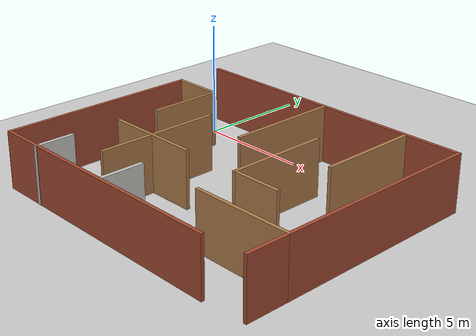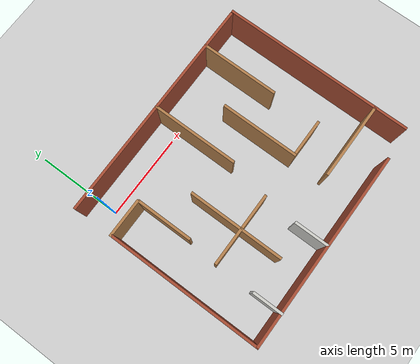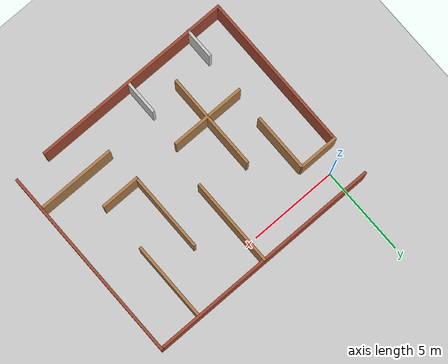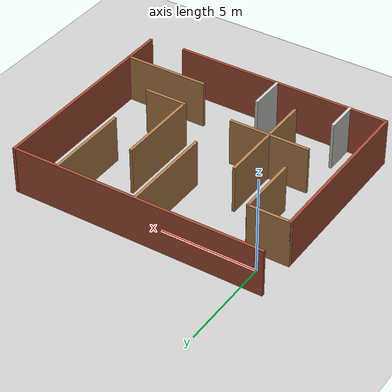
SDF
<sdf version="1.7">
 <world name="default">
  <light name="sun" type="directional">
   <pose>0 0 10 0 -0 0</pose>
   <diffuse>0.8 0.8 0.8 1</diffuse>
   <specular>0.2 0.2 0.2 1</specular>
   <attenuation>
    <range>1000</range>
    <constant>0.9</constant>
    <linear>0.01</linear>
    <quadratic>0.001</quadratic>
   </attenuation>
   <direction>-0.5 0.1 -0.9</direction>
   <spot><inner_angle>0</inner_angle><outer_angle>0</outer_angle><falloff>0</falloff></spot>
  </light>
  <model name="ground_plane">
   <static>1</static>
   <link name="link">
    <collision name="collision">
     <geometry><plane><normal>0 0 1</normal><size>100 100</size></plane></geometry>
     <surface><friction><ode><mu>100</mu><mu2>50</mu2></ode></friction></surface>
    </collision>
    <visual name="visual">
     <cast_shadows>0</cast_shadows>
     <geometry><plane><normal>0 0 1</normal><size>100 100</size></plane></geometry>
     <material>
      <script><uri>file://media/materials/scripts/gazebo.material</uri><name>Gazebo/Grey</name></script>
     </material>
    </visual>
   </link>
  </model>
  <gravity>0 0 -9.8</gravity>
  <magnetic_field>6e-06 2.3e-05 -4.2e-05</magnetic_field>
  <atmosphere type="adiabatic"/>
  <physics type="ode">
   <max_step_size>0.001</max_step_size>
   <real_time_factor>1</real_time_factor>
   <real_time_update_rate>1000</real_time_update_rate>
  </physics>
  <scene><ambient>0.4 0.4 0.4 1</ambient><background>0.7 0.7 0.7 1</background><shadows>1</shadows></scene>
  <spherical_coordinates>
   <surface_model>EARTH_WGS84</surface_model>
   <latitude_deg>0</latitude_deg>
   <longitude_deg>0</longitude_deg>
   <elevation>0</elevation>
   <heading_deg>0</heading_deg>
  </spherical_coordinates>
  <audio><device>default</device></audio>
  <model name="draft">
   <pose>5.6205 -4.351 0 0 -0 0</pose>
   <link name="Wall_13">
    <collision name="Wall_13_Collision">
     <geometry><box><size>3.25 0.15 2.5</size></box></geometry>
     <pose>0 0 1.25 0 -0 0</pose>
    </collision>
    <visual name="Wall_13_Visual">
     <pose>0 0 1.25 0 -0 0</pose>
     <geometry><box><size>3.25 0.15 2.5</size></box></geometry>
     <material>
      <script><uri>file://media/materials/scripts/gazebo.material</uri><name>Gazebo/Wood</name></script>
      <ambient>1 1 1 1</ambient>
     </material>
     <meta><layer>0</layer></meta>
    </visual>
    <pose>-4.4795 1.682 0 0 -0 1.5708</pose>
   </link>
   <link name="Wall_15">
    <collision name="Wall_15_Collision">
     <geometry><box><size>4.25 0.15 2.5</size></box></geometry>
     <pose>0 0 1.25 0 -0 0</pose>
    </collision>
    <visual name="Wall_15_Visual">
     <pose>0 0 1.25 0 -0 0</pose>
     <geometry><box><size>4.25 0.15 2.5</size></box></geometry>
     <material>
      <script><uri>file://media/materials/scripts/gazebo.material</uri><name>Gazebo/Wood</name></script>
      <ambient>1 1 1 1</ambient>
     </material>
     <meta><layer>0</layer></meta>
    </visual>
    <pose>-2.5895 -1.659 0 0 -0 0</pose>
   </link>
   <link name="Wall_17">
    <collision name="Wall_17_Collision">
     <geometry><box><size>5.5 0.15 2.5</size></box></geometry>
     <pose>0 0 1.25 0 -0 0</pose>
    </collision>
    <visual name="Wall_17_Visual">
     <pose>0 0 1.25 0 -0 0</pose>
     <geometry><box><size>5.5 0.15 2.5</size></box></geometry>
     <material>
      <script><uri>file://media/materials/scripts/gazebo.material</uri><name>Gazebo/Wood</name></script>
      <ambient>1 1 1 1</ambient>
     </material>
     <meta><layer>0</layer></meta>
    </visual>
    <pose>-2.5815 -1.34 0 0 -0 -1.5708</pose>
   </link>
   <link name="Wall_19">
    <collision name="Wall_19_Collision">
     <geometry><box><size>1.75 0.15 2.5</size></box></geometry>
     <pose>0 0 1.25 0 -0 0</pose>
    </collision>
    <visual name="Wall_19_Visual">
     <pose>0 0 1.25 0 -0 0</pose>
     <geometry><box><size>1.75 0.15 2.5</size></box></geometry>
     <material>
      <script><uri>file://media/materials/scripts/gazebo.material</uri><name>Gazebo/CeilingTiled</name></script>
      <ambient>1 1 1 1</ambient>
     </material>
     <meta><layer>0</layer></meta>
    </visual>
    <pose>-4.6935 -4.772 0 0 -0 -1.5708</pose>
   </link>
   <link name="Wall_21">
    <collision name="Wall_21_Collision">
     <geometry><box><size>9 0.15 2.5</size></box></geometry>
     <pose>0 0 1.25 0 -0 0</pose>
    </collision>
    <visual name="Wall_21_Visual">
     <pose>0 0 1.25 0 -0 0</pose>
     <geometry><box><size>9 0.15 2.5</size></box></geometry>
     <material>
      <script><uri>file://media/materials/scripts/gazebo.material</uri><name>Gazebo/Bricks</name></script>
      <ambient>1 1 1 1</ambient>
     </material>
     <meta><layer>0</layer></meta>
    </visual>
    <pose>-6.6345 -1.126 0 0 -0 -1.5708</pose>
   </link>
   <link name="Wall_22">
    <collision name="Wall_22_Collision">
     <geometry><box><size>11.5 0.15 2.5</size></box></geometry>
     <pose>0 0 1.25 0 -0 0</pose>
    </collision>
    <visual name="Wall_22_Visual">
     <pose>0 0 1.25 0 -0 0</pose>
     <geometry><box><size>11.5 0.15 2.5</size></box></geometry>
     <material>
      <script><uri>file://media/materials/scripts/gazebo.material</uri><name>Gazebo/Bricks</name></script>
      <ambient>1 1 1 1</ambient>
     </material>
     <meta><layer>0</layer></meta>
    </visual>
    <pose>-0.9595 -5.551 0 0 -0 0</pose>
   </link>
   <link name="Wall_24">
    <collision name="Wall_24_Collision">
     <geometry><box><size>2 0.15 2.5</size></box></geometry>
     <pose>0 0 1.25 0 -0 0</pose>
    </collision>
    <visual name="Wall_24_Visual">
     <pose>0 0 1.25 0 -0 0</pose>
     <geometry><box><size>2 0.15 2.5</size></box></geometry>
     <material>
      <script><uri>file://media/materials/scripts/gazebo.material</uri><name>Gazebo/CeilingTiled</name></script>
      <ambient>1 1 1 1</ambient>
     </material>
     <meta><layer>0</layer></meta>
    </visual>
    <pose>-0.7095 -4.597 0 0 -0 1.5708</pose>
   </link>
   <link name="Wall_26">
    <collision name="Wall_26_Collision">
     <geometry><box><size>5 0.15 2.5</size></box></geometry>
     <pose>0 0 1.25 0 -0 0</pose>
    </collision>
    <visual name="Wall_26_Visual">
     <pose>0 0 1.25 0 -0 0</pose>
     <geometry><box><size>5 0.15 2.5</size></box></geometry>
     <material>
      <script><uri>file://media/materials/scripts/gazebo.material</uri><name>Gazebo/Wood</name></script>
      <ambient>1 1 1 1</ambient>
     </material>
     <meta><layer>0</layer></meta>
    </visual>
    <pose>-0.0545 3.119 0 0 -0 1.5708</pose>
   </link>
   <link name="Wall_28">
    <collision name="Wall_28_Collision">
     <geometry><box><size>4.5 0.15 2.5</size></box></geometry>
     <pose>0 0 1.25 0 -0 0</pose>
    </collision>
    <visual name="Wall_28_Visual">
     <pose>0 0 1.25 0 -0 0</pose>
     <geometry><box><size>4.5 0.15 2.5</size></box></geometry>
     <material>
      <script><uri>file://media/materials/scripts/gazebo.material</uri><name>Gazebo/Wood</name></script>
      <ambient>1 1 1 1</ambient>
     </material>
     <meta><layer>0</layer></meta>
    </visual>
    <pose>2.0975 0.564 0 0 -0 -1.5708</pose>
   </link>
   <link name="Wall_29">
    <collision name="Wall_29_Collision">
     <geometry><box><size>2.25 0.15 2.5</size></box></geometry>
     <pose>0 0 1.25 0 -0 0</pose>
    </collision>
    <visual name="Wall_29_Visual">
     <pose>0 0 1.25 0 -0 0</pose>
     <geometry><box><size>2.25 0.15 2.5</size></box></geometry>
     <material>
      <script><uri>file://media/materials/scripts/gazebo.material</uri><name>Gazebo/Wood</name></script>
      <ambient>1 1 1 1</ambient>
     </material>
     <meta><layer>0</layer></meta>
    </visual>
    <pose>3.1475 -1.611 0 0 -0 0</pose>
   </link>
   <link name="Wall_31">
    <collision name="Wall_31_Collision">
     <geometry><box><size>4.5 0.15 2.5</size></box></geometry>
     <pose>0 0 1.25 0 -0 0</pose>
    </collision>
    <visual name="Wall_31_Visual">
     <pose>0 0 1.25 0 -0 0</pose>
     <geometry><box><size>4.5 0.15 2.5</size></box></geometry>
     <material>
      <script><uri>file://media/materials/scripts/gazebo.material</uri><name>Gazebo/Wood</name></script>
      <ambient>1 1 1 1</ambient>
     </material>
     <meta><layer>0</layer></meta>
    </visual>
    <pose>4.4595 -3.531 0 0 -0 0</pose>
   </link>
   <link name="Wall_32">
    <collision name="Wall_32_Collision">
     <geometry><box><size>9.25 0.15 2.5</size></box></geometry>
     <pose>0 0 1.25 0 -0 0</pose>
    </collision>
    <visual name="Wall_32_Visual">
     <pose>0 0 1.25 0 -0 0</pose>
     <geometry><box><size>9.25 0.15 2.5</size></box></geometry>
     <material>
      <script><uri>file://media/materials/scripts/gazebo.material</uri><name>Gazebo/Bricks</name></script>
      <ambient>1 1 1 1</ambient>
     </material>
     <meta><layer>0</layer></meta>
    </visual>
    <pose>6.6345 1.019 0 0 -0 1.5708</pose>
   </link>
   <link name="Wall_34">
    <collision name="Wall_34_Collision">
     <geometry><box><size>4.5 0.15 2.5</size></box></geometry>
     <pose>0 0 1.25 0 -0 0</pose>
    </collision>
    <visual name="Wall_34_Visual">
     <pose>0 0 1.25 0 -0 0</pose>
     <geometry><box><size>4.5 0.15 2.5</size></box></geometry>
     <material>
      <script><uri>file://media/materials/scripts/gazebo.material</uri><name>Gazebo/Wood</name></script>
      <ambient>1 1 1 1</ambient>
     </material>
     <meta><layer>0</layer></meta>
    </visual>
    <pose>4.1905 3.356 0 0 -0 1.5708</pose>
   </link>
   <link name="Wall_36">
    <collision name="Wall_36_Collision">
     <geometry><box><size>2 0.15 2.5</size></box></geometry>
     <pose>0 0 1.25 0 -0 0</pose>
    </collision>
    <visual name="Wall_36_Visual">
     <pose>0 0 1.25 0 -0 0</pose>
     <geometry><box><size>2 0.15 2.5</size></box></geometry>
     <material>
      <script><uri>file://media/materials/scripts/gazebo.material</uri><name>Gazebo/Bricks</name></script>
      <ambient>1 1 1 1</ambient>
     </material>
     <meta><layer>0</layer></meta>
    </visual>
    <pose>6.6345 -4.456 0 0 -0 -1.5708</pose>
   </link>
   <link name="Wall_5">
    <collision name="Wall_5_Collision">
     <geometry><box><size>13.25 0.15 2.5</size></box></geometry>
     <pose>0 0 1.25 0 -0 0</pose>
    </collision>
    <visual name="Wall_5_Visual">
     <pose>0 0 1.25 0 -0 0</pose>
     <geometry><box><size>13.25 0.15 2.5</size></box></geometry>
     <material>
      <script><uri>file://media/materials/scripts/gazebo.material</uri><name>Gazebo/Bricks</name></script>
      <ambient>1 1 1 1</ambient>
     </material>
     <meta><layer>0</layer></meta>
    </visual>
    <pose>-0.0845 5.572 0 0 -0 0</pose>
   </link>
   <link name="Wall_7">
    <collision name="Wall_7_Collision">
     <geometry><box><size>2.25 0.15 2.5</size></box></geometry>
     <pose>0 0 1.25 0 -0 0</pose>
    </collision>
    <visual name="Wall_7_Visual">
     <pose>0 0 1.25 0 -0 0</pose>
     <geometry><box><size>2.25 0.15 2.5</size></box></geometry>
     <material>
      <script><uri>file://media/materials/scripts/gazebo.material</uri><name>Gazebo/Wood</name></script>
      <ambient>1 1 1 1</ambient>
     </material>
     <meta><layer>0</layer></meta>
    </visual>
    <pose>-5.5845 3.299 0 0 -0 0</pose>
   </link>
   <static>1</static>
  </model>
 </world>
</sdf>
